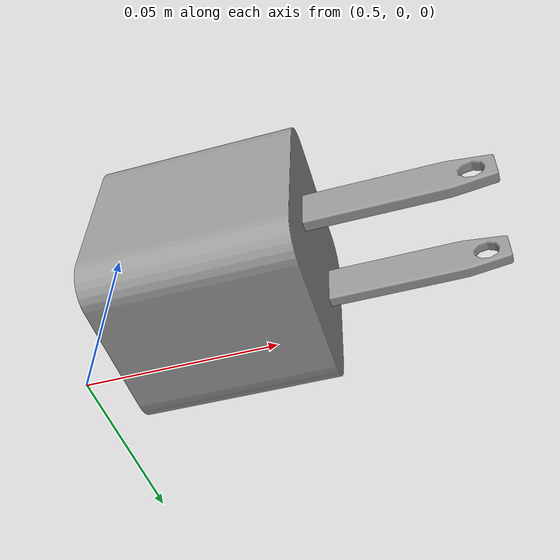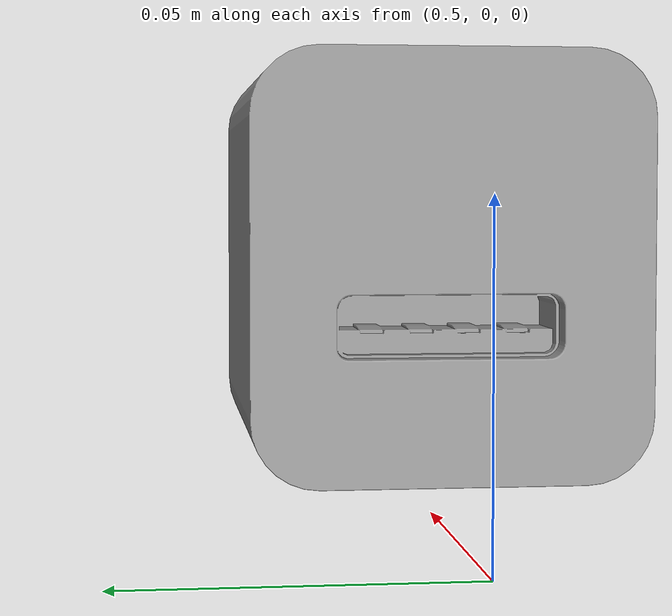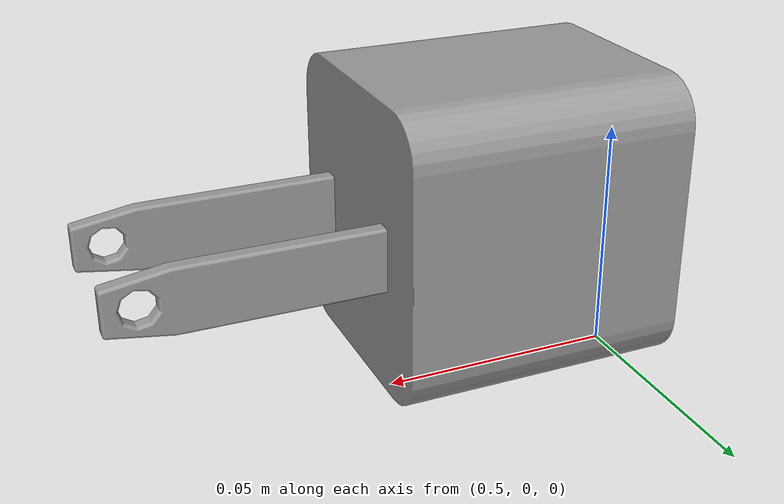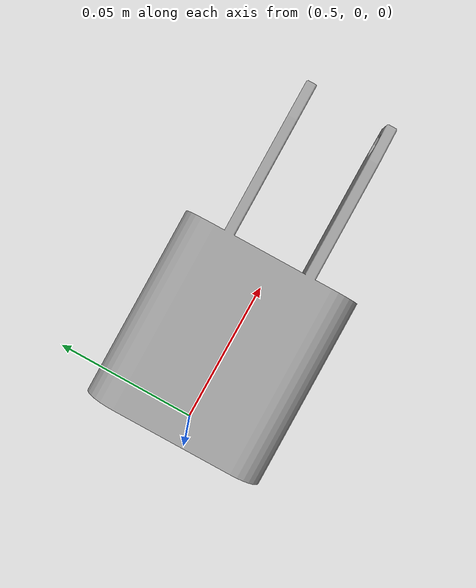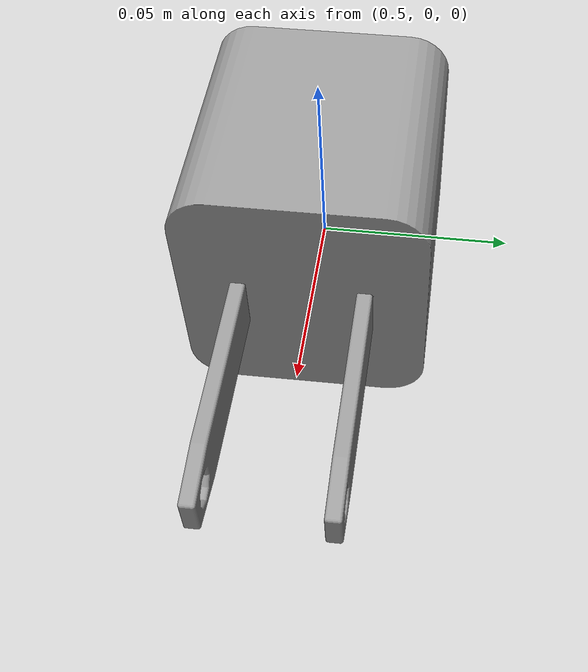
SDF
<?xml version='1.0'?>
<sdf version='1.7'>
  <model name='peg'>
    <link name='link_0'>
      <inertial>
        <mass>1</mass>
        <inertia>
          <ixx>0.166667</ixx>
          <ixy>0</ixy>
          <ixz>0</ixz>
          <iyy>0.166667</iyy>
          <iyz>0</iyz>
          <izz>0.166667</izz>
        </inertia>
        <pose>-0.01 0.05 0.03 0 -0 0</pose>
      </inertial>

      <pose>0.48331 0.012599 0.002722 0 0 -2.0032</pose>
      <gravity>1</gravity>
      <self_collide>0</self_collide>
      <kinematic>0</kinematic>
      <enable_wind>0</enable_wind>
      <visual name='visual'>
        <pose>0 0 0 0 -0 0</pose>
        <geometry>
          <mesh>
            <uri>/home/gao/Desktop/gazebowold/stl2sdf/peg.stl_sdf/mesh.stl</uri>
            <scale>1 1 1</scale>
          </mesh>
        </geometry>
        <material>
          <lighting>1</lighting>
          <script>
            <uri>file://media/materials/scripts/gazebo.material</uri>
            <name>Gazebo/Grey</name>
          </script>
          <shader type='pixel'>
            <normal_map>__default__</normal_map>
          </shader>
          <ambient>0.3 0.3 0.3 1</ambient>
          <diffuse>0.7 0.7 0.7 1</diffuse>
          <specular>0.01 0.01 0.01 1</specular>
          <emissive>0 0 0 1</emissive>
        </material>
        <transparency>0</transparency>
        <cast_shadows>1</cast_shadows>
      </visual>
      <collision name='collision'>
        <laser_retro>0</laser_retro>
        <max_contacts>10</max_contacts>
        <pose>0 0 0 0 -0 0</pose>
        <geometry>
          <mesh>
            <uri>/home/gao/Desktop/gazebowold/stl2sdf/peg.stl_sdf/mesh.stl</uri>
            <scale>1 1 1</scale>
          </mesh>
        </geometry>
        <surface>
          <contact>
           <ode>
            <min_depth>0.00001</min_depth>
           </ode>
          </contact>
          <friction>
            <ode>
              <mu>1</mu>
              <mu2>1</mu2>
              <fdir1>0 0 0</fdir1>
              <slip1>0</slip1>
              <slip2>0</slip2>
            </ode>
            <torsional>
              <coefficient>1</coefficient>
              <patch_radius>0</patch_radius>
              <surface_radius>0</surface_radius>
              <use_patch_radius>1</use_patch_radius>
              <ode>
                <slip>0</slip>
              </ode>
            </torsional>
          </friction>
          <bounce>
            <restitution_coefficient>0</restitution_coefficient>
            <threshold>1e+06</threshold>
          </bounce>
          <contact>
            <collide_without_contact>0</collide_without_contact>
            <collide_without_contact_bitmask>1</collide_without_contact_bitmask>
            <collide_bitmask>1</collide_bitmask>
            <ode>
              <soft_cfm>0</soft_cfm>
              <soft_erp>0.2</soft_erp>
              <kp>1e+13</kp>
              <kd>1</kd>
              <max_vel>0.01</max_vel>
              <min_depth>0</min_depth>
            </ode>
            <bullet>
              <split_impulse>1</split_impulse>
              <split_impulse_penetration_threshold>-0.01</split_impulse_penetration_threshold>
              <soft_cfm>0</soft_cfm>
              <soft_erp>0.2</soft_erp>
              <kp>1e+13</kp>
              <kd>1</kd>
            </bullet>
          </contact>
        </surface>
      </collision>
    </link>
    <static>0</static>
    <allow_auto_disable>1</allow_auto_disable>
  </model>
</sdf>
